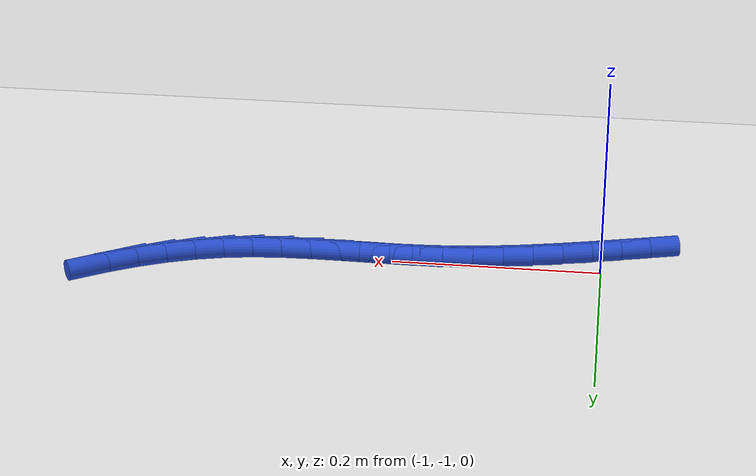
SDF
<sdf version="1.6">
 <world name="default">
  <model name="ground_plane">
   <static>1</static>
   <link name="link">
    <collision name="collision">
     <geometry><plane><normal>0 0 1</normal><size>100 100</size></plane></geometry>
     <surface><friction><ode><mu>100</mu><mu2>50</mu2></ode></friction></surface>
    </collision>
    <visual name="visual">
     <cast_shadows>0</cast_shadows>
     <geometry><plane><normal>0 0 1</normal><size>100 100</size></plane></geometry>
     <material>
      <script><uri>file://media/materials/scripts/gazebo.material</uri><name>Gazebo/WhiteGlow</name></script>
     </material>
    </visual>
   </link>
  </model>
  <model name="line">
   <link name="link_173">
    <pose>-1.0342242287939463 -1.0355327093640343 0.01 0 1.57 0.2507698516461987</pose>
    <collision name="collision">
     <geometry><cylinder><radius>0.01</radius><length>0.08</length></cylinder></geometry>
    </collision>
    <visual name="visual">
     <material>
      <script><name>Gazebo/Blue</name><uri>file://media/materials/scripts/gazebo.material</uri></script>
     </material>
     <geometry><cylinder><radius>0.01</radius><length>0.08</length></cylinder></geometry>
    </visual>
   </link>
   <link name="link_174">
    <pose>-1.0062875666540203 -1.0283763945354196 0.01 0 1.57 0.24264706985397555</pose>
    <collision name="collision">
     <geometry><cylinder><radius>0.01</radius><length>0.08</length></cylinder></geometry>
    </collision>
    <visual name="visual">
     <material>
      <script><name>Gazebo/Blue</name><uri>file://media/materials/scripts/gazebo.material</uri></script>
     </material>
     <geometry><cylinder><radius>0.01</radius><length>0.08</length></cylinder></geometry>
    </visual>
   </link>
   <link name="link_175">
    <pose>-0.9784361825673199 -1.021482505174993 0.01 0 1.57 0.22601399828696336</pose>
    <collision name="collision">
     <geometry><cylinder><radius>0.01</radius><length>0.08</length></cylinder></geometry>
    </collision>
    <visual name="visual">
     <material>
      <script><name>Gazebo/Blue</name><uri>file://media/materials/scripts/gazebo.material</uri></script>
     </material>
     <geometry><cylinder><radius>0.01</radius><length>0.08</length></cylinder></geometry>
    </visual>
   </link>
   <link name="link_176">
    <pose>-0.9505967463307626 -1.0150810290994778 0.01 0 1.57 0.20080197654466292</pose>
    <collision name="collision">
     <geometry><cylinder><radius>0.01</radius><length>0.08</length></cylinder></geometry>
    </collision>
    <visual name="visual">
     <material>
      <script><name>Gazebo/Blue</name><uri>file://media/materials/scripts/gazebo.material</uri></script>
     </material>
     <geometry><cylinder><radius>0.01</radius><length>0.08</length></cylinder></geometry>
    </visual>
   </link>
   <link name="link_177">
    <pose>-0.9226959277412652 -1.0094019541255983 0.01 0 1.57 0.16702554248325255</pose>
    <collision name="collision">
     <geometry><cylinder><radius>0.01</radius><length>0.08</length></cylinder></geometry>
    </collision>
    <visual name="visual">
     <material>
      <script><name>Gazebo/Blue</name><uri>file://media/materials/scripts/gazebo.material</uri></script>
     </material>
     <geometry><cylinder><radius>0.01</radius><length>0.08</length></cylinder></geometry>
    </visual>
   </link>
   <link name="link_178">
    <pose>-0.8946603965957429 -1.0046752680700775 0.01 0 1.57 0.12483823672975349</pose>
    <collision name="collision">
     <geometry><cylinder><radius>0.01</radius><length>0.08</length></cylinder></geometry>
    </collision>
    <visual name="visual">
     <material>
      <script><name>Gazebo/Blue</name><uri>file://media/materials/scripts/gazebo.material</uri></script>
     </material>
     <geometry><cylinder><radius>0.01</radius><length>0.08</length></cylinder></geometry>
    </visual>
   </link>
   <link name="link_179">
    <pose>-0.8664168226911116 -1.0011309587496386 0.01 0 1.57 0.07461777166556025</pose>
    <collision name="collision">
     <geometry><cylinder><radius>0.01</radius><length>0.08</length></cylinder></geometry>
    </collision>
    <visual name="visual">
     <material>
      <script><name>Gazebo/Blue</name><uri>file://media/materials/scripts/gazebo.material</uri></script>
     </material>
     <geometry><cylinder><radius>0.01</radius><length>0.08</length></cylinder></geometry>
    </visual>
   </link>
   <link name="link_180">
    <pose>-0.8378919929117058 -0.9989985404098569 0.01 0 1.57 0.02431421178011466</pose>
    <collision name="collision">
     <geometry><cylinder><radius>0.01</radius><length>0.08</length></cylinder></geometry>
    </collision>
    <visual name="visual">
     <material>
      <script><name>Gazebo/Blue</name><uri>file://media/materials/scripts/gazebo.material</uri></script>
     </material>
     <geometry><cylinder><radius>0.01</radius><length>0.08</length></cylinder></geometry>
    </visual>
   </link>
   <link name="link_181">
    <pose>-0.8090646251215932 -0.9982974875292101 0.01 0 1.57 -0.00725187923240176</pose>
    <collision name="collision">
     <geometry><cylinder><radius>0.01</radius><length>0.08</length></cylinder></geometry>
    </collision>
    <visual name="visual">
     <material>
      <script><name>Gazebo/Blue</name><uri>file://media/materials/scripts/gazebo.material</uri></script>
     </material>
     <geometry><cylinder><radius>0.01</radius><length>0.08</length></cylinder></geometry>
    </visual>
   </link>
   <link name="link_182">
    <pose>-0.7800467878793829 -0.9985079250694417 0.01 0 1.57 -0.017768765452942606</pose>
    <collision name="collision">
     <geometry><cylinder><radius>0.01</radius><length>0.08</length></cylinder></geometry>
    </collision>
    <visual name="visual">
     <material>
      <script><name>Gazebo/Blue</name><uri>file://media/materials/scripts/gazebo.material</uri></script>
     </material>
     <geometry><cylinder><radius>0.01</radius><length>0.08</length></cylinder></geometry>
    </visual>
   </link>
   <link name="link_183">
    <pose>-0.7509716567679439 -0.9990246086331518 0.01 0 1.57 -0.007506439155598425</pose>
    <collision name="collision">
     <geometry><cylinder><radius>0.01</radius><length>0.08</length></cylinder></geometry>
    </collision>
    <visual name="visual">
     <material>
      <script><name>Gazebo/Blue</name><uri>file://media/materials/scripts/gazebo.material</uri></script>
     </material>
     <geometry><cylinder><radius>0.01</radius><length>0.08</length></cylinder></geometry>
    </visual>
   </link>
   <link name="link_184">
    <pose>-0.7219724073701451 -0.9992422938229386 0.01 0 1.57 0.02384240718497129</pose>
    <collision name="collision">
     <geometry><cylinder><radius>0.01</radius><length>0.08</length></cylinder></geometry>
    </collision>
    <visual name="visual">
     <material>
      <script><name>Gazebo/Blue</name><uri>file://media/materials/scripts/gazebo.material</uri></script>
     </material>
     <geometry><cylinder><radius>0.01</radius><length>0.08</length></cylinder></geometry>
    </visual>
   </link>
   <link name="link_185">
    <pose>-0.6931822152688571 -0.998555736241401 0.01 0 1.57 0.07704236775043627</pose>
    <collision name="collision">
     <geometry><cylinder><radius>0.01</radius><length>0.08</length></cylinder></geometry>
    </collision>
    <visual name="visual">
     <material>
      <script><name>Gazebo/Blue</name><uri>file://media/materials/scripts/gazebo.material</uri></script>
     </material>
     <geometry><cylinder><radius>0.01</radius><length>0.08</length></cylinder></geometry>
    </visual>
   </link>
   <link name="link_186">
    <pose>-0.6647342560469491 -0.9963596914911382 0.01 0 1.57 0.15285364410119695</pose>
    <collision name="collision">
     <geometry><cylinder><radius>0.01</radius><length>0.08</length></cylinder></geometry>
    </collision>
    <visual name="visual">
     <material>
      <script><name>Gazebo/Blue</name><uri>file://media/materials/scripts/gazebo.material</uri></script>
     </material>
     <geometry><cylinder><radius>0.01</radius><length>0.08</length></cylinder></geometry>
    </visual>
   </link>
   <link name="link_187">
    <pose>-0.636761484677868 -0.9920503374702523 0.01 0 1.57 0.24283127176299457</pose>
    <collision name="collision">
     <geometry><cylinder><radius>0.01</radius><length>0.08</length></cylinder></geometry>
    </collision>
    <visual name="visual">
     <material>
      <script><name>Gazebo/Blue</name><uri>file://media/materials/scripts/gazebo.material</uri></script>
     </material>
     <geometry><cylinder><radius>0.01</radius><length>0.08</length></cylinder></geometry>
    </visual>
   </link>
   <link name="link_188">
    <pose>-0.6093598529982046 -0.9852624157547263 0.01 0 1.57 0.32811192178447446</pose>
    <collision name="collision">
     <geometry><cylinder><radius>0.01</radius><length>0.08</length></cylinder></geometry>
    </collision>
    <visual name="visual">
     <material>
      <script><name>Gazebo/Blue</name><uri>file://media/materials/scripts/gazebo.material</uri></script>
     </material>
     <geometry><cylinder><radius>0.01</radius><length>0.08</length></cylinder></geometry>
    </visual>
   </link>
   <link name="link_189">
    <pose>-0.5825471010213911 -0.9761349089598909 0.01 0 1.57 0.40581194373246365</pose>
    <collision name="collision">
     <geometry><cylinder><radius>0.01</radius><length>0.08</length></cylinder></geometry>
    </collision>
    <visual name="visual">
     <material>
      <script><name>Gazebo/Blue</name><uri>file://media/materials/scripts/gazebo.material</uri></script>
     </material>
     <geometry><cylinder><radius>0.01</radius><length>0.08</length></cylinder></geometry>
    </visual>
   </link>
   <link name="link_190">
    <pose>-0.5563310287003969 -0.964870884467491 0.01 0 1.57 0.47580703571507427</pose>
    <collision name="collision">
     <geometry><cylinder><radius>0.01</radius><length>0.08</length></cylinder></geometry>
    </collision>
    <visual name="visual">
     <material>
      <script><name>Gazebo/Blue</name><uri>file://media/materials/scripts/gazebo.material</uri></script>
     </material>
     <geometry><cylinder><radius>0.01</radius><length>0.08</length></cylinder></geometry>
    </visual>
   </link>
   <link name="link_191">
    <pose>-0.5307194359881915 -0.9516734096592702 0.01 0 1.57 0.5383070611565146</pose>
    <collision name="collision">
     <geometry><cylinder><radius>0.01</radius><length>0.08</length></cylinder></geometry>
    </collision>
    <visual name="visual">
     <material>
      <script><name>Gazebo/Blue</name><uri>file://media/materials/scripts/gazebo.material</uri></script>
     </material>
     <geometry><cylinder><radius>0.01</radius><length>0.08</length></cylinder></geometry>
    </visual>
   </link>
  </model>
 </world>
</sdf>
